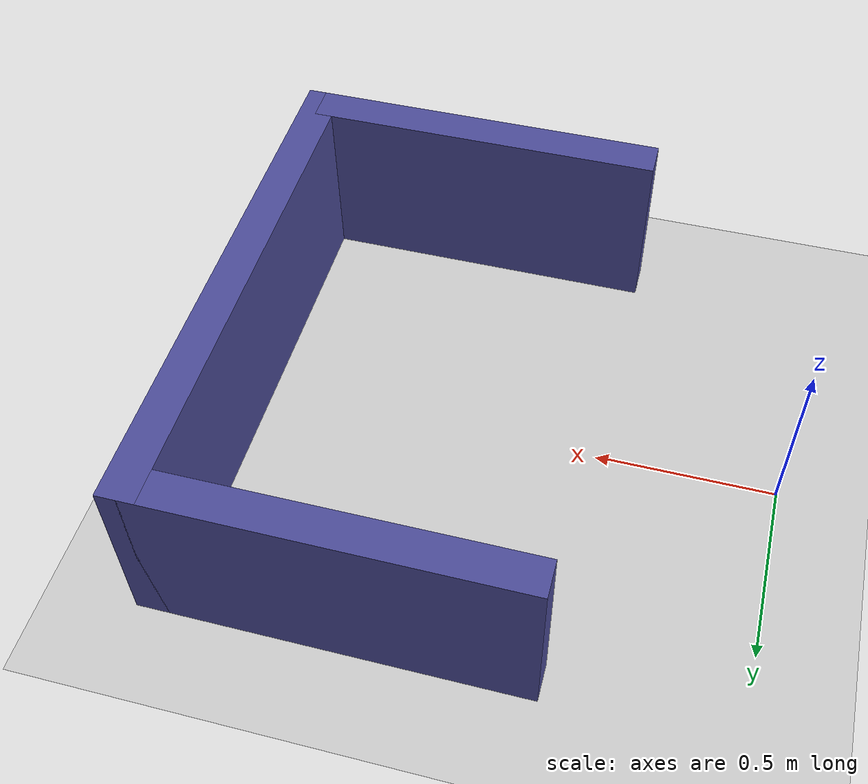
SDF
<?xml version="1.0" ?>
<sdf version="1.6">
  <world name="default">
    <plugin name="gazebo_ros_state" filename="libgazebo_ros_state.so"/>

    <include>
      <uri>model://ground_plane</uri>
    </include>

    <include>
      <uri>model://sun</uri>
    </include>

    <physics type="ode">
      <real_time_update_rate>0</real_time_update_rate>
      <max_step_size>0.001</max_step_size>
      <real_time_factor>0</real_time_factor>
      <ode>
        <solver>
          <type>quick</type>
          <iters>150</iters>
          <precon_iters>0</precon_iters>
          <sor>1.400000</sor>
          <use_dynamic_moi_rescaling>1</use_dynamic_moi_rescaling>
        </solver>
        <constraints>
          <cfm>0.00001</cfm>
          <erp>0.2</erp>
          <contact_max_correcting_vel>2000.000000</contact_max_correcting_vel>
          <contact_surface_layer>0.01000</contact_surface_layer>
        </constraints>
      </ode>
    </physics>

    <model name="de_back">
      <static>true</static>
      <pose>1.5 0.0 0.25 0 0 1.5708</pose>
      <link name="link">
        <collision name="collision">
          <geometry><box><size>1.5 0.1 0.5</size></box></geometry>
        </collision>
        <visual name="visual">
          <geometry><box><size>1.5 0.1 0.5</size></box></geometry>
          <material><ambient>0.3 0.3 0.6 1</ambient></material>
        </visual>
      </link>
    </model>
    <model name="de_left">
      <static>true</static>
      <pose>1.0 0.7 0.25 0 0 0.0</pose>
      <link name="link">
        <collision name="collision">
          <geometry><box><size>1.0 0.1 0.5</size></box></geometry>
        </collision>
        <visual name="visual">
          <geometry><box><size>1.0 0.1 0.5</size></box></geometry>
          <material><ambient>0.3 0.3 0.6 1</ambient></material>
        </visual>
      </link>
    </model>
    <model name="de_right">
      <static>true</static>
      <pose>1.0 -0.7 0.25 0 0 0.0</pose>
      <link name="link">
        <collision name="collision">
          <geometry><box><size>1.0 0.1 0.5</size></box></geometry>
        </collision>
        <visual name="visual">
          <geometry><box><size>1.0 0.1 0.5</size></box></geometry>
          <material><ambient>0.3 0.3 0.6 1</ambient></material>
        </visual>
      </link>
    </model>

  </world>
</sdf>
